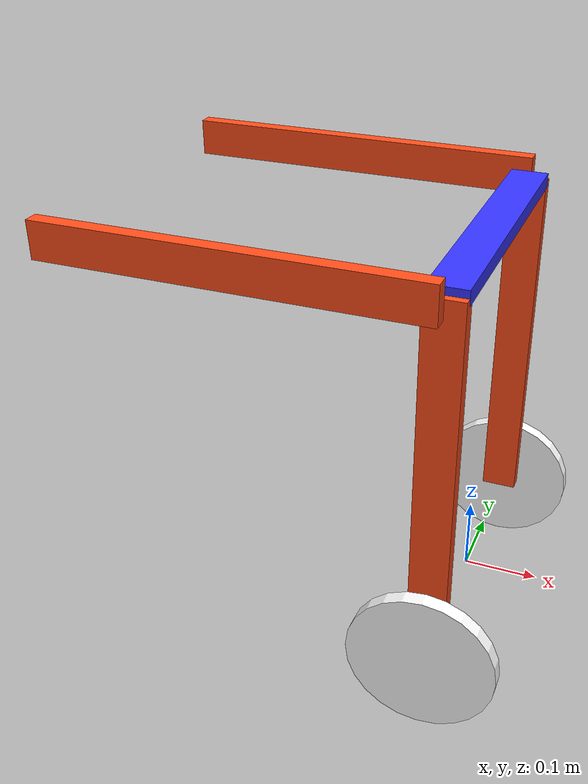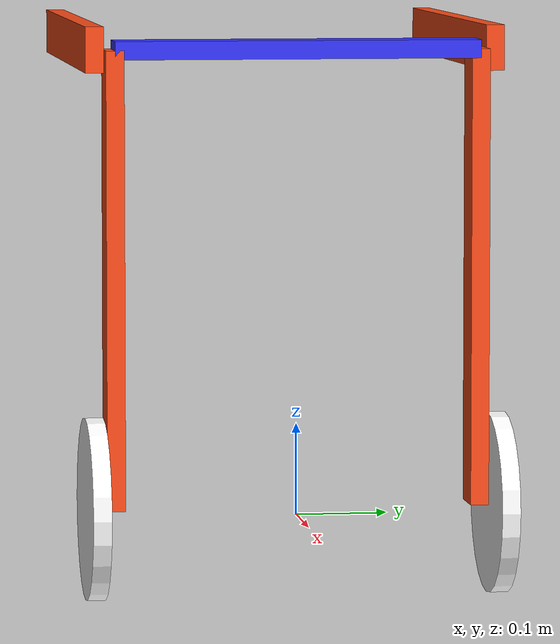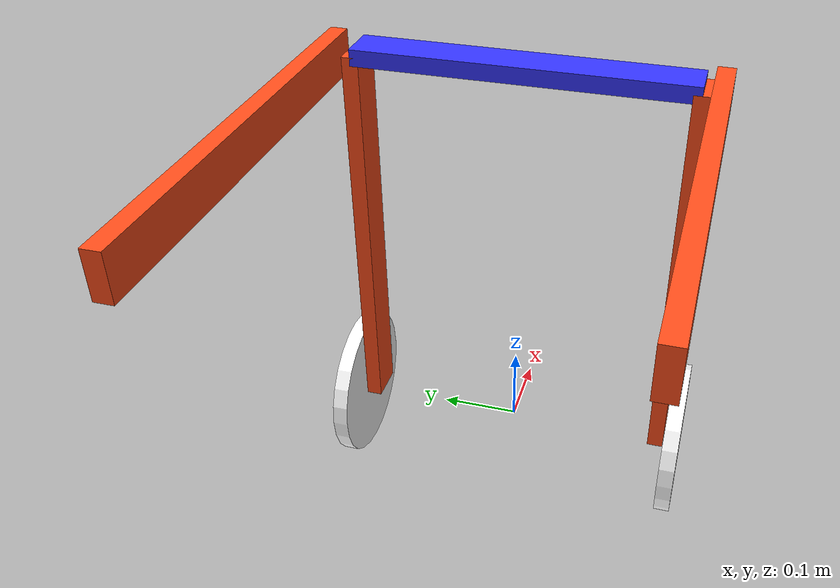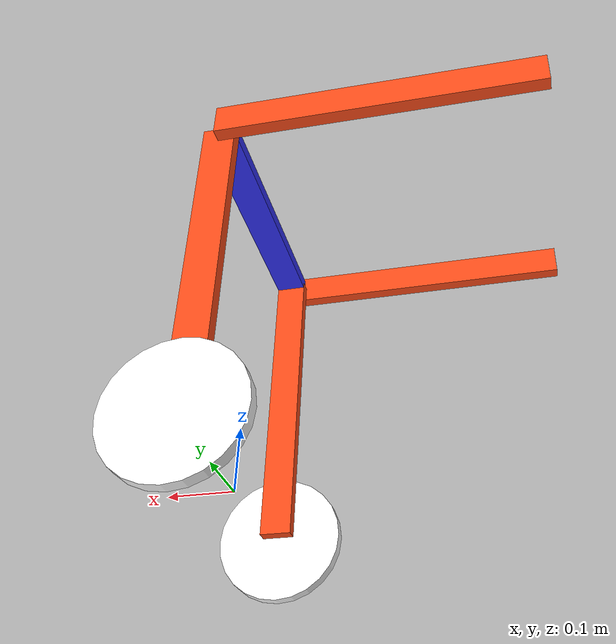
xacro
<?xml version="1.0"?>
<robot xmlns:xacro="http://www.ros.org/wiki/xacro" >

    <xacro:include filename='inertial_macros.xacro' />

    <xacro:property name="L1" value="0.5" />
    <xacro:property name="L2" value="0.5" />
    <xacro:property name="W" value="0.4" />
    <xacro:property name="LW" value="0.02" />
    <xacro:property name="LWW" value="0.05" />
    <xacro:property name="leg_mass" value="1" />
    <xacro:property name="hand_mass" value="1" />
    <xacro:property name="shaft_mass" value="0.8" />

    <xacro:property name="R" value="0.1" />
    <xacro:property name="WL" value="0.02" />
    <xacro:property name="wheel_mass" value="5" />

    <xacro:property name="motor" value="continuous" />

    <material name="white">
        <color rgba="1 1 1 1" />
    </material>

    <material name="orange">
        <color rgba="1 0.3 0.1 1"/>
    </material>

    <material name="blue">
        <color rgba="0.2 0.2 1 1"/>
    </material>

    <material name="black">
        <color rgba="0 0 0 1"/>
    </material>

    <!-- BASE LINK -->

    <link name="base_link">

    </link>

    <!-- SHAFT -->
    <link name="shaft_link">
        <visual>
            <origin xyz="0 0 0" rpy="0 0 0"/>
            <geometry>
                <box size="${LWW} ${W} ${LW}"/>
            </geometry>
            <material name="blue"/>
        </visual>
        <collision>
            <origin xyz="0 0 0" rpy="0 0 0"/>
            <geometry>
                <box size="${LWW} ${W} ${LW}"/>
            </geometry>
        </collision>
        <xacro:inertial_box mass="${shaft_mass}" x="${LWW}" y="${W}" z="${LW}">
            <origin xyz="0 0 0" rpy="0 0 0"/>
        </xacro:inertial_box>
    </link>

    <gazebo reference="shaft_link">
        <material>Gazebo/Blue</material>
    </gazebo>

    <joint name="base_shaft_joint" type="fixed">
        <origin xyz="0 0 ${L1 + LW/2}" rpy="0 0 0"/>
        <parent link="base_link"/>
        <child link="shaft_link"/>
    </joint>

    <!-- LEFT LEG -->
    <link name="left_leg_link">
        <visual>
            <origin xyz="0 0 ${L1/2}" rpy="0 0 0"/>
            <geometry>
                <box size="${LWW} ${LW} ${L1}"/>
            </geometry>
            <material name="orange"/>
        </visual>
        <collision>
            <origin xyz="0 0 ${L1/2}" rpy="0 0 0"/>
            <geometry>
                <box size="${LWW} ${LW} ${L1}"/>
            </geometry>
        </collision>
        <xacro:inertial_box mass="${leg_mass}" x="${LWW}" y="${LW}" z="${L1}">
            <origin xyz="0 0 ${L1/2}" rpy="0 0 0"/>
        </xacro:inertial_box>
    </link>

    <gazebo reference="left_leg_link">
        <material>Gazebo/Orange</material>
    </gazebo>

    <joint name="left_leg_joint" type="fixed">
        <origin xyz="0 ${W/2} ${-L1}" rpy="0 0 0"/>
        <parent link="shaft_link"/>
        <child link="left_leg_link"/>
    </joint>

    <!-- LEFT WHEEL-->
    <link name="left_wheel_link">
        <visual>
            <origin xyz="0 0 0" rpy="0 0 0"/>
            <geometry>
                <cylinder radius="${R}" length="${WL}"/>
            </geometry>
            <material name="white"/>
        </visual>
        <collision>
            <origin xyz="0 0 0" rpy="0 0 0"/>
            <geometry>
                <cylinder radius="${R}" length="${WL}"/>
            </geometry>
        </collision>
        <xacro:inertial_cylinder mass="${wheel_mass}" radius="${R}" length="${WL}">
            <origin xyz="0 0 0" rpy="0 0 0"/>
        </xacro:inertial_cylinder>
    </link>

    <gazebo reference="left_wheel_link">
        <material>Gazebo/White</material>
    </gazebo>

    <joint name="left_wheel_joint" type="${motor}">
        <origin xyz="0 ${LW/2 + WL/2 + 0.002} 0" rpy="${-pi/2} 0 0"/>
        <parent link="left_leg_link"/>
        <child link="left_wheel_link"/>
        <axis xyz="0 0 1"/>
    </joint>

    <!-- RIGHT LEG -->
    <link name="right_leg_link">
        <visual>
            <origin xyz="0 0 ${L1/2}" rpy="0 0 0"/>
            <geometry>
                <box size="${LWW} ${LW} ${L1}"/>
            </geometry>
            <material name="orange"/>
        </visual>
        <collision>
            <origin xyz="0 0 ${L1/2}" rpy="0 0 0"/>
            <geometry>
                <box size="${LWW} ${LW} ${L1}"/>
            </geometry>
        </collision>
        <xacro:inertial_box mass="${leg_mass}" x="${LWW}" y="${LW}" z="${L1}">
            <origin xyz="0 0 ${L1/2}" rpy="0 0 0"/>
        </xacro:inertial_box>
    </link>

    <gazebo reference="right_leg_link">
        <material>Gazebo/Orange</material>
    </gazebo>

    <joint name="right_leg_joint" type="fixed">
        <origin xyz="0 ${-W/2} ${-L1}" rpy="0 0 0"/>
        <parent link="shaft_link"/>
        <child link="right_leg_link"/>
    </joint>

    <!-- RIGHT WHEEL-->
    <link name="right_wheel_link">
        <visual>
            <origin xyz="0 0 0" rpy="0 0 0"/>
            <geometry>
                <cylinder radius="${R}" length="${WL}"/>
            </geometry>
            <material name="white"/>
        </visual>
        <collision>
            <origin xyz="0 0 0" rpy="0 0 0"/>
            <geometry>
                <cylinder radius="${R}" length="${WL}"/>
            </geometry>
        </collision>
        <xacro:inertial_cylinder mass="${wheel_mass}" radius="${R}" length="${WL}">
            <origin xyz="0 0 0" rpy="0 0 0"/>
        </xacro:inertial_cylinder>
    </link>

    <gazebo reference="right_wheel_link">
        <material>Gazebo/White</material>
    </gazebo>

    <joint name="right_wheel_joint" type="${motor}">
        <origin xyz="0 ${-LW/2 - WL/2 - 0.002} 0" rpy="${pi/2} 0 0"/>
        <parent link="right_leg_link"/>
        <child link="right_wheel_link"/>
        <axis xyz="0 0 1"/>
    </joint>

    <!-- LEFT HAND -->
    <link name="left_hand_link">
        <visual>
            <origin xyz="0 0 ${L1/2}" rpy="0 0 0"/>
            <geometry>
                <box size="${LWW} ${LW} ${L1}"/>
            </geometry>
            <material name="orange"/>
        </visual>
        <collision>
            <origin xyz="0 0 ${L1/2}" rpy="0 0 0"/>
            <geometry>
                <box size="${LWW} ${LW} ${L1}"/>
            </geometry>
        </collision>
        <xacro:inertial_box mass="${hand_mass}" x="${LWW}" y="${LW}" z="${L1}">
            <origin xyz="0 0 ${L1/2}" rpy="0 0 0"/>
        </xacro:inertial_box>
    </link>

    <gazebo reference="left_hand_link">
        <material>Gazebo/Orange</material>
    </gazebo>

    <joint name="left_hand_joint" type="fixed">
        <origin xyz="0 ${W/2 + LW} 0" rpy="0 ${-pi/2} 0"/>
        <parent link="shaft_link"/>
        <child link="left_hand_link"/>
    </joint>

    <!-- RIGHT HAND -->
    <link name="right_hand_link">
        <visual>
            <origin xyz="0 0 ${L1/2}" rpy="0 0 0"/>
            <geometry>
                <box size="${LWW} ${LW} ${L1}"/>
            </geometry>
            <material name="orange"/>
        </visual>
        <collision>
            <origin xyz="0 0 ${L1/2}" rpy="0 0 0"/>
            <geometry>
                <box size="${LWW} ${LW} ${L1}"/>
            </geometry>
        </collision>
        <xacro:inertial_box mass="${hand_mass}" x="${LWW}" y="${LW}" z="${L1}">
            <origin xyz="0 0 ${L1/2}" rpy="0 0 0"/>
        </xacro:inertial_box>
    </link>

    <gazebo reference="right_hand_link">
        <material>Gazebo/Orange</material>
    </gazebo>

    <joint name="right_hand_joint" type="fixed">
        <origin xyz="0 ${-W/2 - LW} 0" rpy="0 ${-pi/2} 0"/>
        <parent link="shaft_link"/>
        <child link="right_hand_link"/>
    </joint>

</robot>
